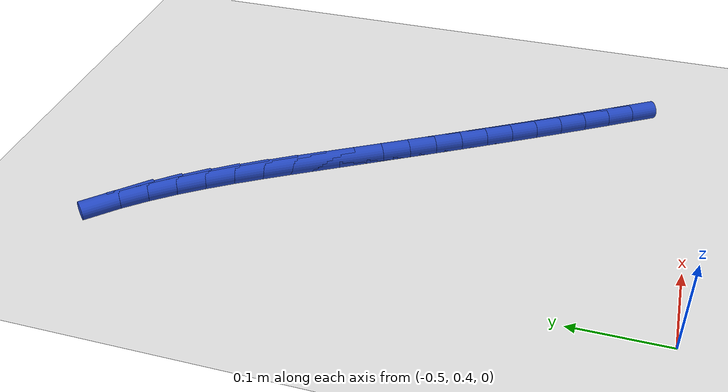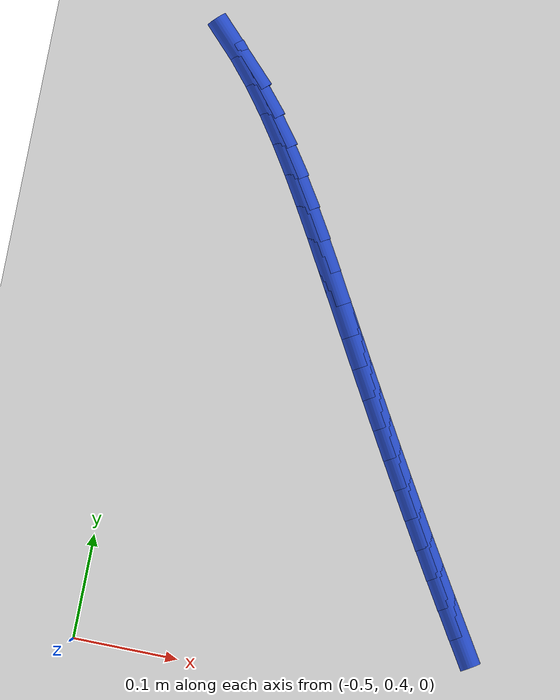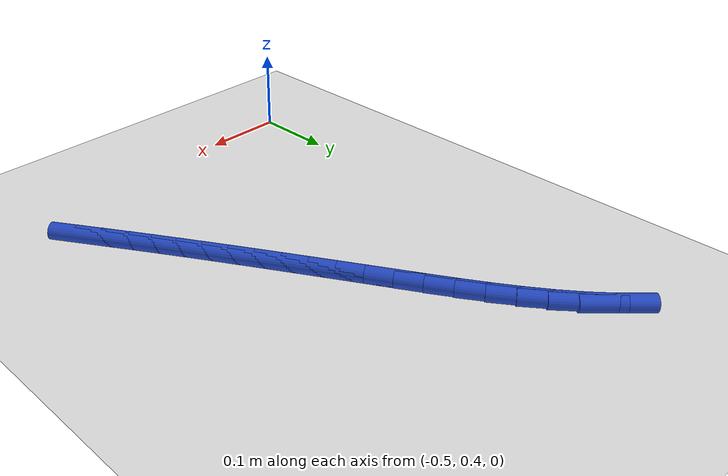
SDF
<sdf version="1.6">
 <world name="default">
  <model name="ground_plane">
   <static>1</static>
   <link name="link">
    <collision name="collision">
     <geometry><plane><normal>0 0 1</normal><size>100 100</size></plane></geometry>
     <surface><friction><ode><mu>100</mu><mu2>50</mu2></ode></friction></surface>
    </collision>
    <visual name="visual">
     <cast_shadows>0</cast_shadows>
     <geometry><plane><normal>0 0 1</normal><size>100 100</size></plane></geometry>
     <material>
      <script><uri>file://media/materials/scripts/gazebo.material</uri><name>Gazebo/WhiteGlow</name></script>
     </material>
    </visual>
   </link>
  </model>
  <model name="line">
   <link name="link_17">
    <pose>-0.14942153830289126 0.481654812519252 0.01 0 1.57 -1.0107705846912403</pose>
    <collision name="collision">
     <geometry><cylinder><radius>0.01</radius><length>0.08</length></cylinder></geometry>
    </collision>
    <visual name="visual">
     <material>
      <script><name>Gazebo/Blue</name><uri>file://media/materials/scripts/gazebo.material</uri></script>
     </material>
     <geometry><cylinder><radius>0.01</radius><length>0.08</length></cylinder></geometry>
    </visual>
   </link>
   <link name="link_18">
    <pose>-0.16547487934135363 0.5072588236158317 0.01 0 1.57 -1.0137283619796218</pose>
    <collision name="collision">
     <geometry><cylinder><radius>0.01</radius><length>0.08</length></cylinder></geometry>
    </collision>
    <visual name="visual">
     <material>
      <script><name>Gazebo/Blue</name><uri>file://media/materials/scripts/gazebo.material</uri></script>
     </material>
     <geometry><cylinder><radius>0.01</radius><length>0.08</length></cylinder></geometry>
    </visual>
   </link>
   <link name="link_19">
    <pose>-0.18137769046557403 0.5327902303137512 0.01 0 1.57 -1.019291092657098</pose>
    <collision name="collision">
     <geometry><cylinder><radius>0.01</radius><length>0.08</length></cylinder></geometry>
    </collision>
    <visual name="visual">
     <material>
      <script><name>Gazebo/Blue</name><uri>file://media/materials/scripts/gazebo.material</uri></script>
     </material>
     <geometry><cylinder><radius>0.01</radius><length>0.08</length></cylinder></geometry>
    </visual>
   </link>
   <link name="link_20">
    <pose>-0.19706479659043677 0.5582903321093274 0.01 0 1.57 -1.024461029910032</pose>
    <collision name="collision">
     <geometry><cylinder><radius>0.01</radius><length>0.08</length></cylinder></geometry>
    </collision>
    <visual name="visual">
     <material>
      <script><name>Gazebo/Blue</name><uri>file://media/materials/scripts/gazebo.material</uri></script>
     </material>
     <geometry><cylinder><radius>0.01</radius><length>0.08</length></cylinder></geometry>
    </visual>
   </link>
   <link name="link_21">
    <pose>-0.21257221174297006 0.5837928352761822 0.01 0 1.57 -1.0290999874890407</pose>
    <collision name="collision">
     <geometry><cylinder><radius>0.01</radius><length>0.08</length></cylinder></geometry>
    </collision>
    <visual name="visual">
     <material>
      <script><name>Gazebo/Blue</name><uri>file://media/materials/scripts/gazebo.material</uri></script>
     </material>
     <geometry><cylinder><radius>0.01</radius><length>0.08</length></cylinder></geometry>
    </visual>
   </link>
   <link name="link_22">
    <pose>-0.22793959546960188 0.6093311725284594 0.01 0 1.57 -1.0331825921077555</pose>
    <collision name="collision">
     <geometry><cylinder><radius>0.01</radius><length>0.08</length></cylinder></geometry>
    </collision>
    <visual name="visual">
     <material>
      <script><name>Gazebo/Blue</name><uri>file://media/materials/scripts/gazebo.material</uri></script>
     </material>
     <geometry><cylinder><radius>0.01</radius><length>0.08</length></cylinder></geometry>
    </visual>
   </link>
   <link name="link_23">
    <pose>-0.24320660731676025 0.6349387765803034 0.01 0 1.57 -1.0366890266519224</pose>
    <collision name="collision">
     <geometry><cylinder><radius>0.01</radius><length>0.08</length></cylinder></geometry>
    </collision>
    <visual name="visual">
     <material>
      <script><name>Gazebo/Blue</name><uri>file://media/materials/scripts/gazebo.material</uri></script>
     </material>
     <geometry><cylinder><radius>0.01</radius><length>0.08</length></cylinder></geometry>
    </visual>
   </link>
   <link name="link_24">
    <pose>-0.258412906830873 0.6606490801458582 0.01 0 1.57 -1.0396053130117529</pose>
    <collision name="collision">
     <geometry><cylinder><radius>0.01</radius><length>0.08</length></cylinder></geometry>
    </collision>
    <visual name="visual">
     <material>
      <script><name>Gazebo/Blue</name><uri>file://media/materials/scripts/gazebo.material</uri></script>
     </material>
     <geometry><cylinder><radius>0.01</radius><length>0.08</length></cylinder></geometry>
    </visual>
   </link>
   <link name="link_25">
    <pose>-0.2735981535583682 0.6864955159392684 0.01 0 1.57 -1.04192345153611</pose>
    <collision name="collision">
     <geometry><cylinder><radius>0.01</radius><length>0.08</length></cylinder></geometry>
    </collision>
    <visual name="visual">
     <material>
      <script><name>Gazebo/Blue</name><uri>file://media/materials/scripts/gazebo.material</uri></script>
     </material>
     <geometry><cylinder><radius>0.01</radius><length>0.08</length></cylinder></geometry>
    </visual>
   </link>
   <link name="link_26">
    <pose>-0.28880200704567366 0.7125115166746774 0.01 0 1.57 -1.0436414164426133</pose>
    <collision name="collision">
     <geometry><cylinder><radius>0.01</radius><length>0.08</length></cylinder></geometry>
    </collision>
    <visual name="visual">
     <material>
      <script><name>Gazebo/Blue</name><uri>file://media/materials/scripts/gazebo.material</uri></script>
     </material>
     <geometry><cylinder><radius>0.01</radius><length>0.08</length></cylinder></geometry>
    </visual>
   </link>
   <link name="link_27">
    <pose>-0.30406412683921735 0.7387305150662298 0.01 0 1.57 -1.0447630125856138</pose>
    <collision name="collision">
     <geometry><cylinder><radius>0.01</radius><length>0.08</length></cylinder></geometry>
    </collision>
    <visual name="visual">
     <material>
      <script><name>Gazebo/Blue</name><uri>file://media/materials/scripts/gazebo.material</uri></script>
     </material>
     <geometry><cylinder><radius>0.01</radius><length>0.08</length></cylinder></geometry>
    </visual>
   </link>
   <link name="link_28">
    <pose>-0.3194241724854271 0.7651859438280693 0.01 0 1.57 -1.0452976043324436</pose>
    <collision name="collision">
     <geometry><cylinder><radius>0.01</radius><length>0.08</length></cylinder></geometry>
    </collision>
    <visual name="visual">
     <material>
      <script><name>Gazebo/Blue</name><uri>file://media/materials/scripts/gazebo.material</uri></script>
     </material>
     <geometry><cylinder><radius>0.01</radius><length>0.08</length></cylinder></geometry>
    </visual>
   </link>
   <link name="link_29">
    <pose>-0.334921803531928 0.7919112356701343 0.01 0 1.57 -1.043949242646931</pose>
    <collision name="collision">
     <geometry><cylinder><radius>0.01</radius><length>0.08</length></cylinder></geometry>
    </collision>
    <visual name="visual">
     <material>
      <script><name>Gazebo/Blue</name><uri>file://media/materials/scripts/gazebo.material</uri></script>
     </material>
     <geometry><cylinder><radius>0.01</radius><length>0.08</length></cylinder></geometry>
    </visual>
   </link>
   <link name="link_30">
    <pose>-0.3506122394375096 0.8188851382346258 0.01 0 1.57 -1.0356049996372712</pose>
    <collision name="collision">
     <geometry><cylinder><radius>0.01</radius><length>0.08</length></cylinder></geometry>
    </collision>
    <visual name="visual">
     <material>
      <script><name>Gazebo/Blue</name><uri>file://media/materials/scripts/gazebo.material</uri></script>
     </material>
     <geometry><cylinder><radius>0.01</radius><length>0.08</length></cylinder></geometry>
    </visual>
   </link>
   <link name="link_31">
    <pose>-0.3666121469347485 0.8458704436680093 0.01 0 1.57 -1.0189613494072602</pose>
    <collision name="collision">
     <geometry><cylinder><radius>0.01</radius><length>0.08</length></cylinder></geometry>
    </collision>
    <visual name="visual">
     <material>
      <script><name>Gazebo/Blue</name><uri>file://media/materials/scripts/gazebo.material</uri></script>
     </material>
     <geometry><cylinder><radius>0.01</radius><length>0.08</length></cylinder></geometry>
    </visual>
   </link>
   <link name="link_32">
    <pose>-0.3830533589974266 0.8725766425960131 0.01 0 1.57 -0.9937336484632711</pose>
    <collision name="collision">
     <geometry><cylinder><radius>0.01</radius><length>0.08</length></cylinder></geometry>
    </collision>
    <visual name="visual">
     <material>
      <script><name>Gazebo/Blue</name><uri>file://media/materials/scripts/gazebo.material</uri></script>
     </material>
     <geometry><cylinder><radius>0.01</radius><length>0.08</length></cylinder></geometry>
    </visual>
   </link>
   <link name="link_33">
    <pose>-0.4000677085993259 0.8987132256443665 0.01 0 1.57 -0.9593856578627199</pose>
    <collision name="collision">
     <geometry><cylinder><radius>0.01</radius><length>0.08</length></cylinder></geometry>
    </collision>
    <visual name="visual">
     <material>
      <script><name>Gazebo/Blue</name><uri>file://media/materials/scripts/gazebo.material</uri></script>
     </material>
     <geometry><cylinder><radius>0.01</radius><length>0.08</length></cylinder></geometry>
    </visual>
   </link>
   <link name="link_34">
    <pose>-0.4177870287142279 0.9239896834387973 0.01 0 1.57 -0.9151580423322914</pose>
    <collision name="collision">
     <geometry><cylinder><radius>0.01</radius><length>0.08</length></cylinder></geometry>
    </collision>
    <visual name="visual">
     <material>
      <script><name>Gazebo/Blue</name><uri>file://media/materials/scripts/gazebo.material</uri></script>
     </material>
     <geometry><cylinder><radius>0.01</radius><length>0.08</length></cylinder></geometry>
    </visual>
   </link>
   <link name="link_35">
    <pose>-0.436343152315915 0.9481155066050351 0.01 0 1.57 -0.8601216312061593</pose>
    <collision name="collision">
     <geometry><cylinder><radius>0.01</radius><length>0.08</length></cylinder></geometry>
    </collision>
    <visual name="visual">
     <material>
      <script><name>Gazebo/Blue</name><uri>file://media/materials/scripts/gazebo.material</uri></script>
     </material>
     <geometry><cylinder><radius>0.01</radius><length>0.08</length></cylinder></geometry>
    </visual>
   </link>
   <link name="link_36">
    <pose>-0.4558679123781686 0.970800185768808 0.01 0 1.57 -0.7932818395417996</pose>
    <collision name="collision">
     <geometry><cylinder><radius>0.01</radius><length>0.08</length></cylinder></geometry>
    </collision>
    <visual name="visual">
     <material>
      <script><name>Gazebo/Blue</name><uri>file://media/materials/scripts/gazebo.material</uri></script>
     </material>
     <geometry><cylinder><radius>0.01</radius><length>0.08</length></cylinder></geometry>
    </visual>
   </link>
  </model>
 </world>
</sdf>
